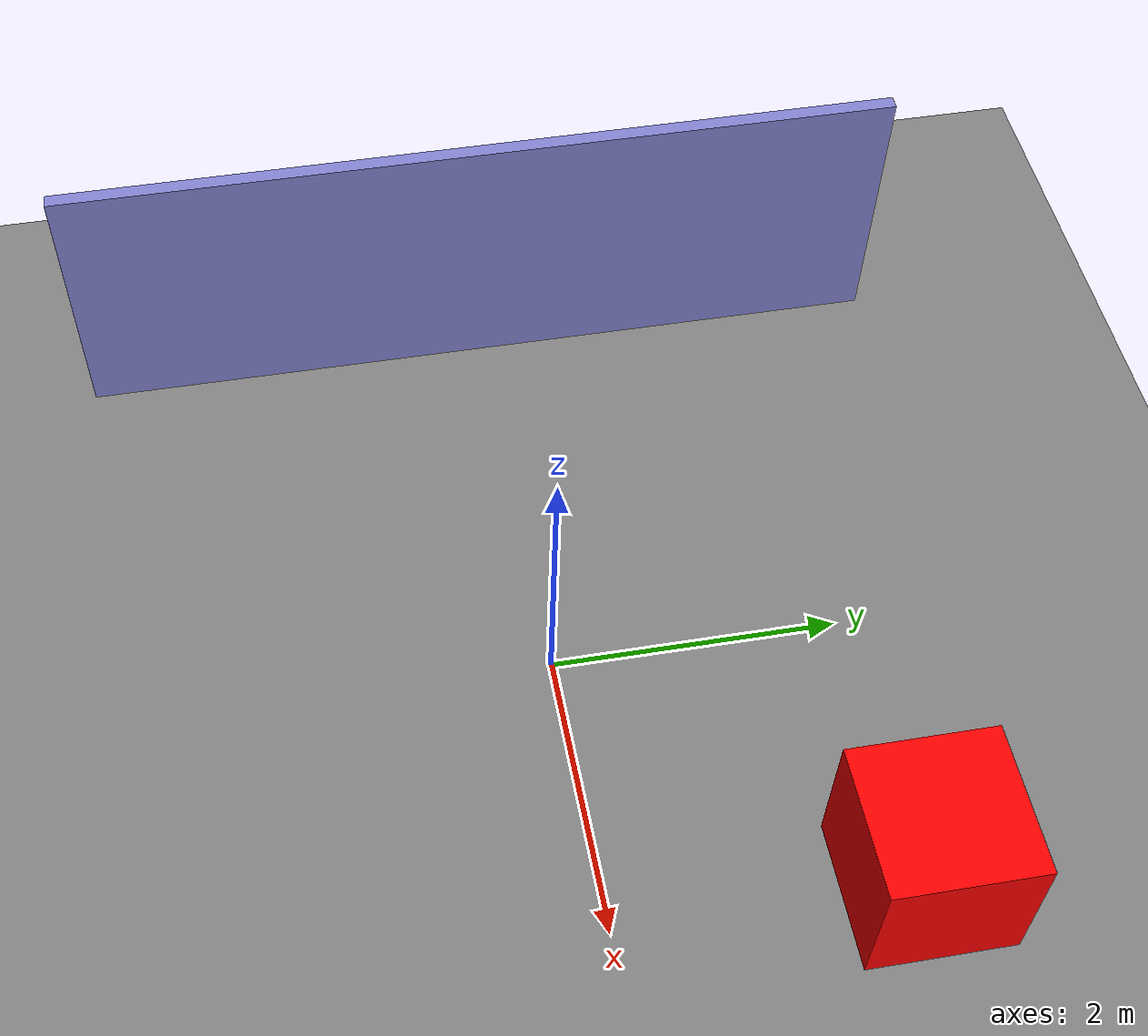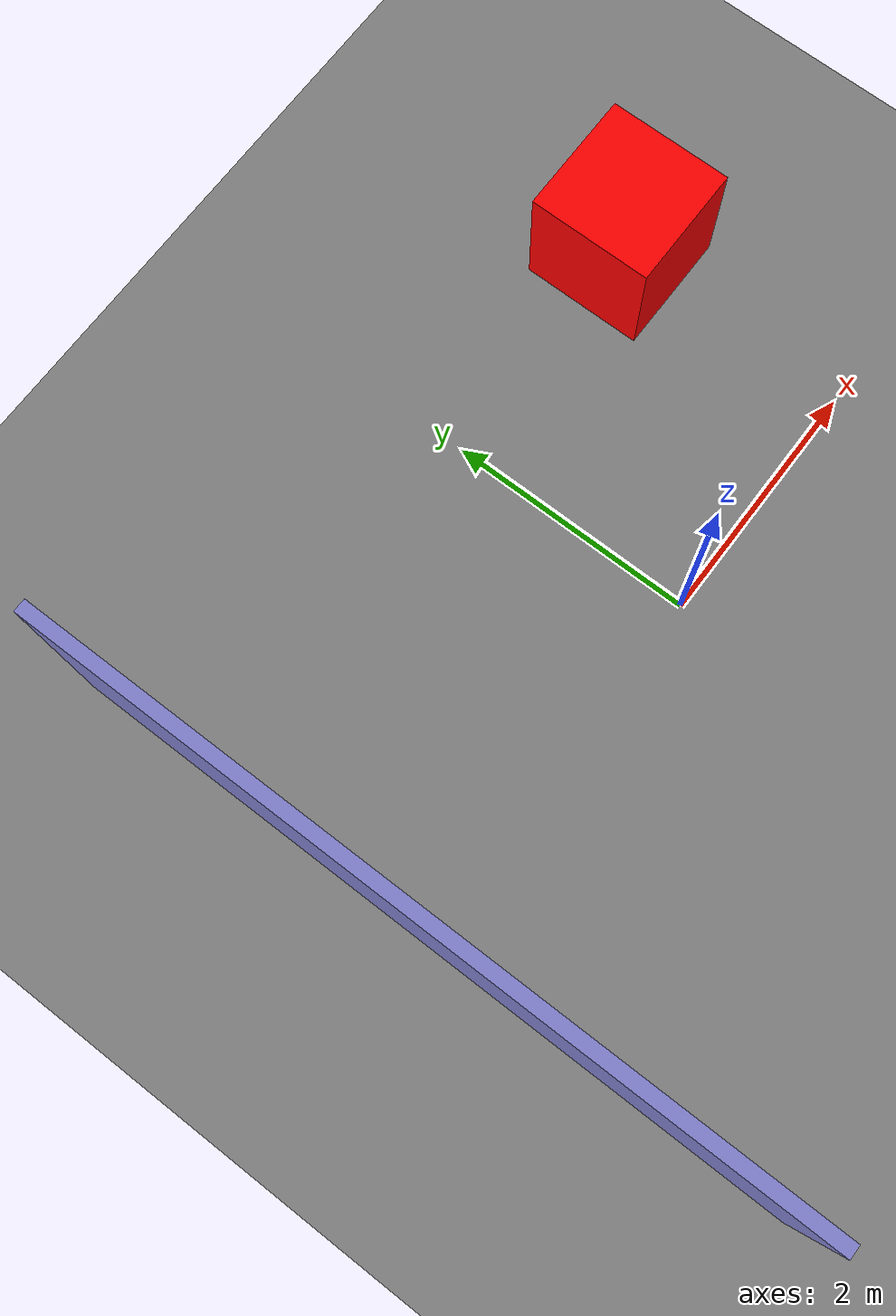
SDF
<?xml version="1.0" ?>
<sdf version="1.7">
  <world name="basic_world">
    <light name="sun" type="directional">
      <cast_shadows>true</cast_shadows>
      <pose>0 0 10 0 0 0</pose>
      <diffuse>0.8 0.8 0.8 1</diffuse>
      <specular>0.2 0.2 0.2 1</specular>
      <attenuation>
        <range>1000</range>
        <constant>0.9</constant>
        <linear>0.01</linear>
        <quadratic>0.001</quadratic>
      </attenuation>
      <direction>-0.4 0.2 -1</direction>
    </light>

    <model name="ground_plane">
      <static>true</static>
      <link name="link">
        <collision name="collision">
          <geometry>
            <plane>
              <normal>0 0 1</normal>
              <size>100 100</size>
            </plane>
          </geometry>
        </collision>
        <visual name="visual">
          <geometry>
            <plane>
              <normal>0 0 1</normal>
              <size>100 100</size>
            </plane>
          </geometry>
          <material>
            <ambient>0.3 0.3 0.3 1</ambient>
            <diffuse>0.5 0.5 0.5 1</diffuse>
            <specular>0.1 0.1 0.1 1</specular>
          </material>
        </visual>
      </link>
    </model>

    <!-- Optional: Add some simple objects for the robot to interact with -->
    <model name="box1">
      <pose>2 2 0.5 0 0 0</pose>
      <link name="link">
        <collision name="collision">
          <geometry>
            <box>
              <size>1 1 1</size>
            </box>
          </geometry>
        </collision>
        <visual name="visual">
          <geometry>
            <box>
              <size>1 1 1</size>
            </box>
          </geometry>
          <material>
            <ambient>1 0 0 1</ambient>
            <diffuse>1 0 0 1</diffuse>
            <specular>0.1 0.1 0.1 1</specular>
          </material>
        </visual>
      </link>
    </model>

    <!-- Optional: Add a wall -->
    <model name="wall1">
      <pose>-3 0 1 0 0 0</pose>
      <link name="link">
        <collision name="collision">
          <geometry>
            <box>
              <size>0.1 6 2</size>
            </box>
          </geometry>
        </collision>
        <visual name="visual">
          <geometry>
            <box>
              <size>0.1 6 2</size>
            </box>
          </geometry>
          <material>
            <ambient>0.5 0.5 0.8 1</ambient>
            <diffuse>0.5 0.5 0.8 1</diffuse>
            <specular>0.1 0.1 0.1 1</specular>
          </material>
        </visual>
      </link>
    </model>
  </world>
</sdf>
